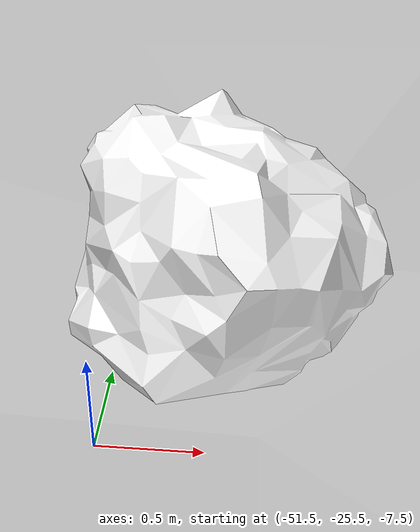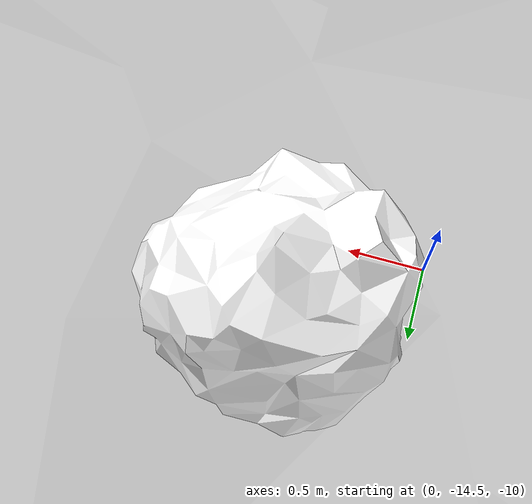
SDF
<sdf version="1.5">
  <world name="default">
    <plugin
      filename="gz-sim-physics-system"
      name="gz::sim::systems::Physics"/>
    <plugin
      filename="gz-sim-user-commands-system"
      name="gz::sim::systems::UserCommands"/>
    <plugin
      filename="gz-sim-scene-broadcaster-system"
      name="gz::sim::systems::SceneBroadcaster"/>
    <plugin
      filename="gz-sim-imu-system"
      name="gz::sim::systems::Imu"/>
    <plugin
      filename="gz-sim-sensors-system"
      name="gz::sim::systems::Sensors">
      <render_engine>ogre2</render_engine>
    </plugin>

    <!-- Martian Gravity-->
    <gravity>0 0 -3.711</gravity>

    <light type="directional" name="sun">
      <cast_shadows>true</cast_shadows>
      <pose>0 0 50 0 0 0</pose>
      <diffuse>0.9 0.9 0.85 1</diffuse>
      <specular>0.2 0.2 0.2 1</specular>
      <direction>-0.5 0.2 -1</direction>
    </light>

    <include>
      <uri>model://curiosity_path</uri>
      <name>curiosity_path</name>
      <pose>0 0 0 0 0 0</pose>
    </include>

    <include>
      <uri>model://rock</uri>
      <name>falling_rock1</name>
      <pose>0.800 -13.779 -9.347 0.633 0 0</pose>
    </include>

    <include>
      <uri>model://rock</uri>
      <name>falling_rock2</name>
      <pose>-25.717 -30.815 -9.765 0 0 0</pose>
    </include>

    <include>
      <uri>model://rock</uri>
      <name>falling_rock3</name>
      <pose>-50.941 -24.810 -6.930 0 0 0</pose>
    </include>

    <include>
      <uri>model://rock</uri>
      <name>falling_rock4</name>
      <pose>-57.521 -12.014 -5.231 0 0 0</pose>
    </include>

  </world>
</sdf>

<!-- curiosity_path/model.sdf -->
<sdf version="1.5">
  <model name="curiosity_path">
      <static>true</static>
      <link name='link'>
       <collision name="collision">
        <geometry>
            <mesh>
              <uri>model://curiosity_path/meshes/curiosity_path25k.stl</uri>
              <scale>1 1 1</scale>
            </mesh>
        </geometry>
        <surface>
          <contact>
             <collide_bitmask>0xffff</collide_bitmask>
          </contact>
          <friction>
            <ode>
              <mu>100</mu>
              <mu2>50</mu2>
            </ode>
          </friction>
        </surface>
      </collision>
        <visual name='visual'>
          <geometry>
            <mesh>
              <uri>model://curiosity_path/meshes/curiosity_path25k.dae</uri>
              <scale>1 1 1</scale>
            </mesh>
          </geometry>
        </visual>
      </link>
  </model>
</sdf>

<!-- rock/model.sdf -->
<sdf version="1.6">
  <model name="falling_rock1">
    <static>true</static>
    <link name="base_link">
      <inertial>
        <pose>-0.056101 0.007340 0.020250 0 0 0</pose>
        <mass>2569.46</mass>
        <inertia>
          <ixx>466.314</ixx>
          <ixy>6.554</ixy>
          <ixz>-0.846</ixz>
          <iyy>479.238</iyy>
          <iyz>-5.226</iyz>
          <izz>499.184</izz>
        </inertia>
      </inertial>
      <collision name="collision">
        <geometry>
          <mesh>
            <uri>model://rock/meshes/FallingRock01_Collider.dae</uri>
          </mesh>
        </geometry>
      </collision>
      <visual name="visual">
        <geometry>
          <mesh>
            <uri>model://rock/meshes/FallingRock01.dae</uri>
          </mesh>
        </geometry>
        <material>
          <diffuse>1.0 1.0 1.0</diffuse>
          <specular>1.0 1.0 1.0</specular>
          <pbr>
            <metal>
              <albedo_map>model://rock/materials/textures/FallingRocks_Albedo.jpg</albedo_map>
              <normal_map>model://rock/materials/textures/FallingRocks_Normal.jpg</normal_map>
              <roughness_map>model://rock/materials/textures/FallingRocks_Roughness.jpg</roughness_map>
            </metal>
          </pbr>
          <!-- fallback to script if no PBR support-->
          <script>
            <uri>model://rock/materials/scripts</uri>
            <uri>model://rock/materials/textures</uri>
            <name>FallingRocks/FallingRocks_Diffuse</name>
          </script>
        </material>
      </visual>
    </link>
  </model>
</sdf>
